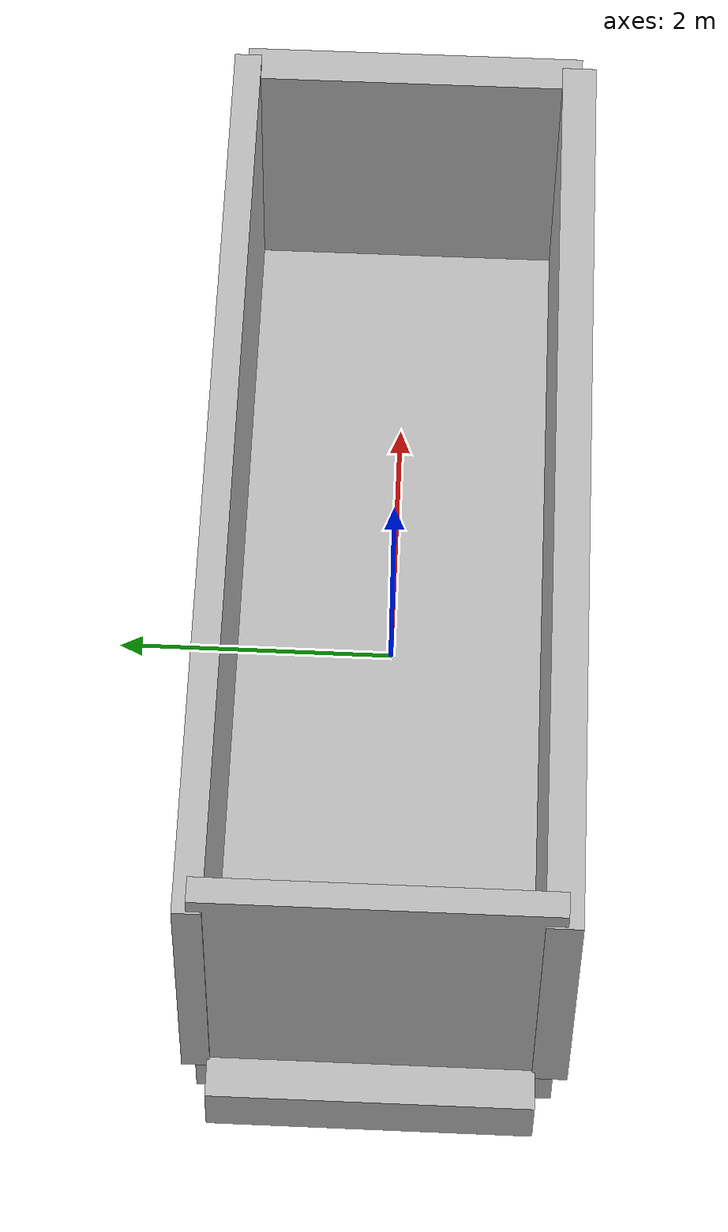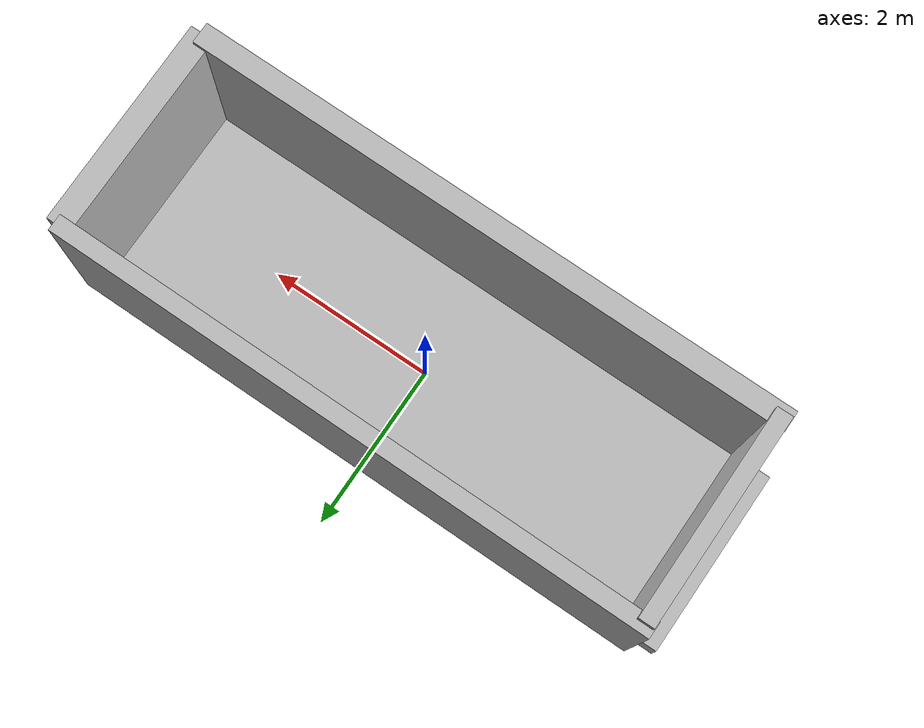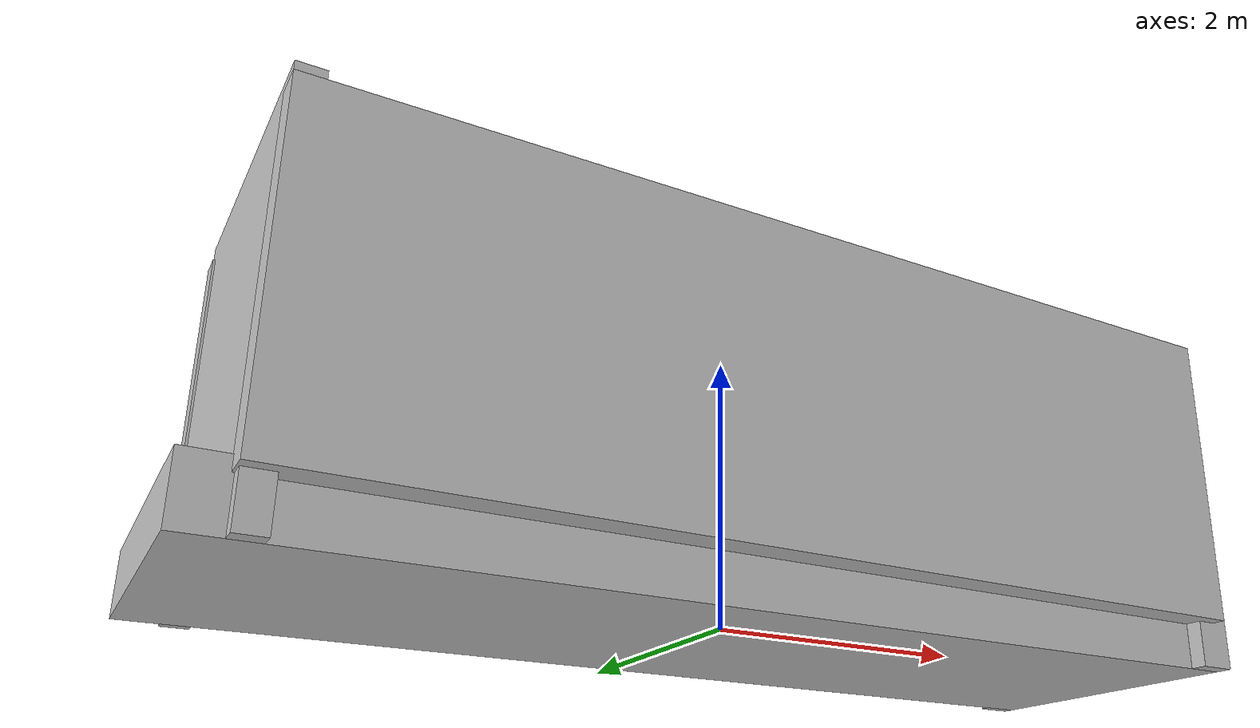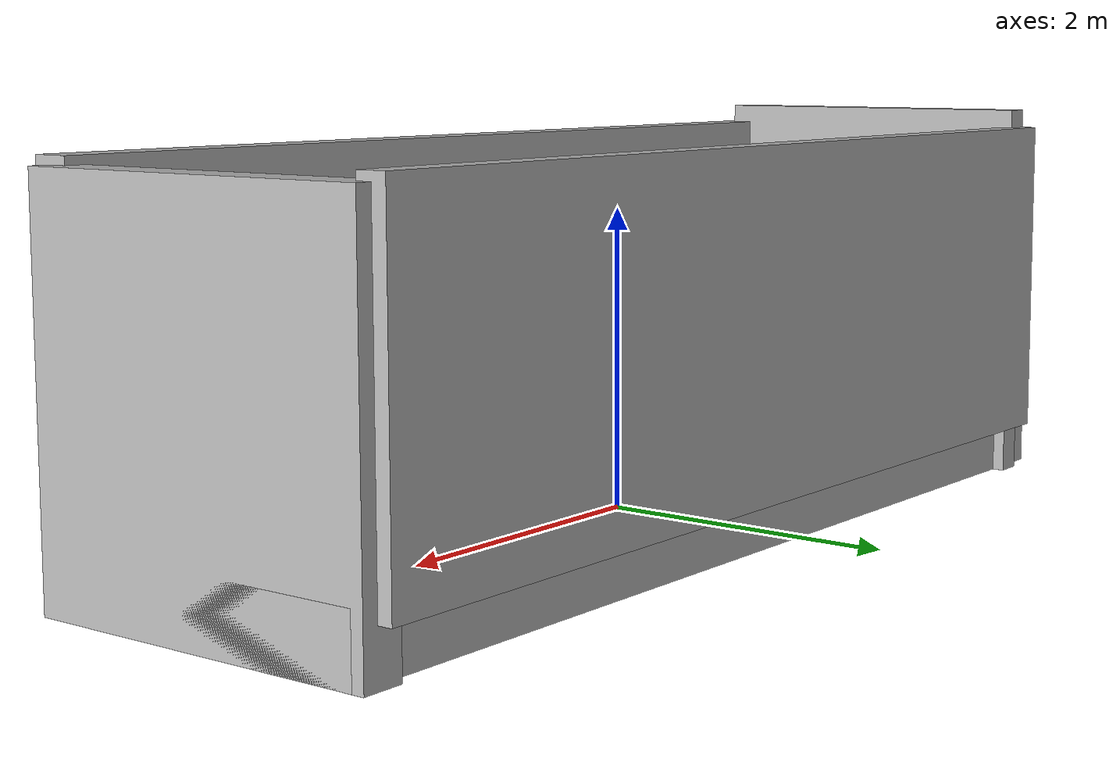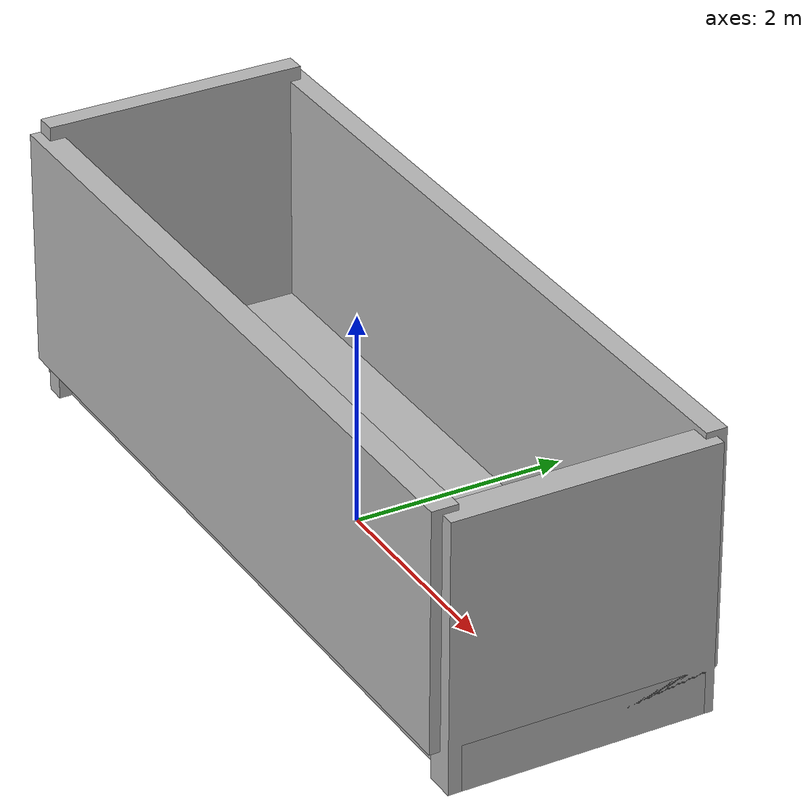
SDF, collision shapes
<?xml version="1.0" ?>
<sdf version="1.6">
  <model name="Dumpster_Large">
    <link name="base_link">
      <visual name="base_visual">
        <geometry>
          <mesh>
            <uri>base_visual.glb</uri>
          </mesh>
        </geometry>
      </visual>
      <collision name="box015001_collider_box">
        <pose>0.081367 1.21897 1.334814 0.0 0.0 0.0</pose>
        <geometry>
          <box>
            <size>7.0972 0.196529 2.246558</size>
          </box>
        </geometry>
      </collision>
      <collision name="box015001_collider_box.001">
        <pose>0.070731 -1.213102 1.334835 0.0 0.0 0.0</pose>
        <geometry>
          <box>
            <size>7.072949 0.245827 2.246517</size>
          </box>
        </geometry>
      </collision>
      <collision name="box015001_collider_box.002">
        <pose>-3.358019 -0.007172 1.229047 0.0 0.0 0.0</pose>
        <geometry>
          <box>
            <size>0.186664 2.458094 2.716692</size>
          </box>
        </geometry>
      </collision>
      <collision name="box015001_collider_box.003">
        <pose>-0.003617 0.012904 0.089457 0.0 0.0 0.0</pose>
        <geometry>
          <box>
            <size>7.480402 2.252423 0.437513</size>
          </box>
        </geometry>
      </collision>
      <collision name="box015001_collider_box.004">
        <pose>3.596625 -0.007172 1.136868 0.0 0.0 0.0</pose>
        <geometry>
          <box>
            <size>0.279918 2.458094 2.532333</size>
          </box>
        </geometry>
      </collision>
    </link>
  </model>
</sdf>
